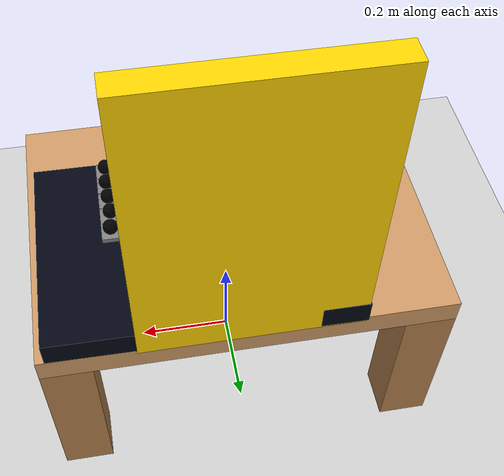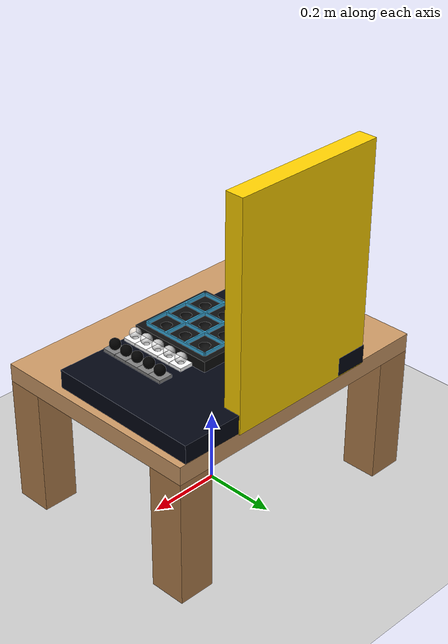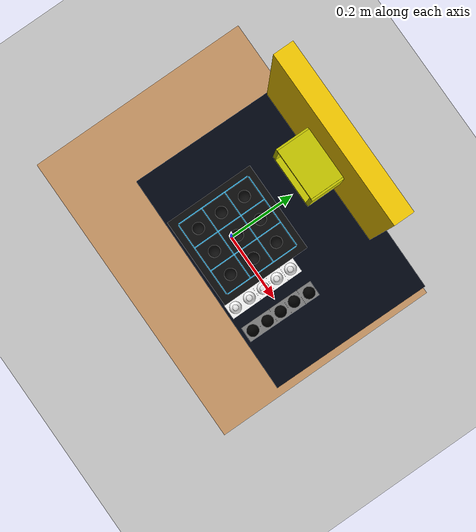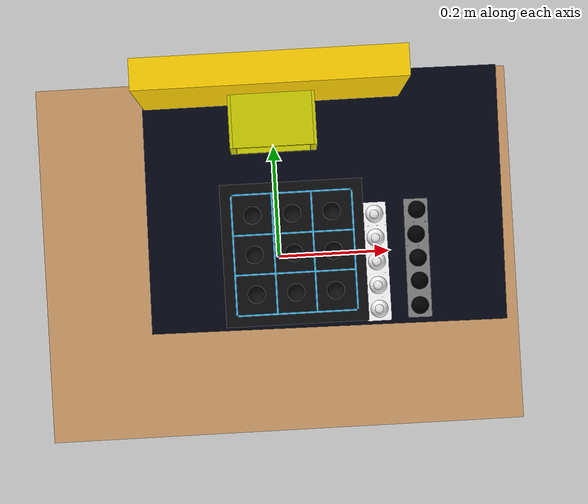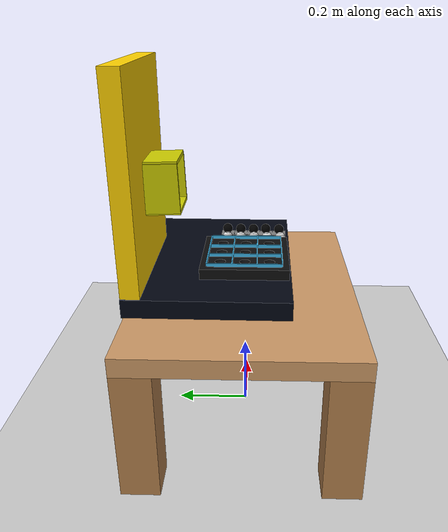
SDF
<sdf version="1.10">
 <world name="WORKINGPROTO">
  <physics name="1ms" type="ignored">
   <max_step_size>0.001</max_step_size>
   <real_time_factor>1</real_time_factor>
   <real_time_update_rate>1000</real_time_update_rate>
  </physics>
  <plugin name="gz::sim::systems::Physics" filename="gz-sim-physics-system"/>
  <plugin name="gz::sim::systems::UserCommands" filename="gz-sim-user-commands-system"/>
  <plugin name="gz::sim::systems::SceneBroadcaster" filename="gz-sim-scene-broadcaster-system"/>
  <gravity>0 0 -9.8000000000000007</gravity>
  <magnetic_field>5.5644999999999998e-06 2.2875799999999999e-05 -4.2388400000000002e-05</magnetic_field>
  <atmosphere type="adiabatic"/>
  <scene>
   <ambient>0.400000006 0.400000006 0.400000006 1</ambient>
   <background>0.699999988 0.699999988 0.699999988 1</background>
   <shadows>true</shadows>
  </scene>
  <model name="ground_plane">
   <static>true</static>
   <link name="link">
    <collision name="collision">
     <geometry><plane><normal>0 0 1</normal><size>100 100</size></plane></geometry>
     <surface>
      <contact><collide_bitmask>65535</collide_bitmask><ode><mu>100</mu><mu2>50</mu2></ode></contact>
      <friction><ode><mu>100</mu><mu2>50</mu2></ode></friction>
     </surface>
    </collision>
    <visual name="visual">
     <cast_shadows>false</cast_shadows>
     <geometry><plane><normal>0 0 1</normal><size>100 100</size></plane></geometry>
     <material>
      <ambient>0.800000012 0.800000012 0.800000012 1</ambient>
      <diffuse>0.800000012 0.800000012 0.800000012 1</diffuse>
      <specular>0 0 0 1</specular>
     </material>
    </visual>
    <inertial>
     <mass>1</mass>
     <inertia><ixx>1</ixx><ixy>0</ixy><ixz>0</ixz><iyy>1</iyy><iyz>0</iyz><izz>1</izz></inertia>
    </inertial>
   </link>
  </model>
  <model name="study_table">
   <static>true</static>
   <link name="table_link">
    <inertial>
     <mass>50</mass>
     <inertia><ixx>10</ixx><iyy>8</iyy><izz>6</izz><ixy>0</ixy><ixz>0</ixz><iyz>0</iyz></inertia>
    </inertial>
    <visual name="table_top">
     <pose>0 0 0.375 0 0 0</pose>
     <geometry><box><size>0.80000000000000004 0.59999999999999998 0.050000000000000003</size></box></geometry>
     <material>
      <ambient>0.800000012 0.600000024 0.400000006 1</ambient>
      <diffuse>0.800000012 0.600000024 0.400000006 1</diffuse>
     </material>
    </visual>
    <visual name="table_leg1">
     <pose>0.34999999999999998 0.25 0.17499999999999999 0 0 0</pose>
     <geometry><box><size>0.10000000000000001 0.10000000000000001 0.34999999999999998</size></box></geometry>
     <material>
      <ambient>0.699999988 0.5 0.300000012 1</ambient>
      <diffuse>0.699999988 0.5 0.300000012 1</diffuse>
     </material>
    </visual>
    <visual name="table_leg2">
     <pose>-0.34999999999999998 0.25 0.17499999999999999 0 0 0</pose>
     <geometry><box><size>0.10000000000000001 0.10000000000000001 0.34999999999999998</size></box></geometry>
     <material>
      <ambient>0.699999988 0.5 0.300000012 1</ambient>
      <diffuse>0.699999988 0.5 0.300000012 1</diffuse>
     </material>
    </visual>
    <visual name="table_leg3">
     <pose>0.34999999999999998 -0.25 0.17499999999999999 0 0 0</pose>
     <geometry><box><size>0.10000000000000001 0.10000000000000001 0.34999999999999998</size></box></geometry>
     <material>
      <ambient>0.699999988 0.5 0.300000012 1</ambient>
      <diffuse>0.699999988 0.5 0.300000012 1</diffuse>
     </material>
    </visual>
    <visual name="table_leg4">
     <pose>-0.34999999999999998 -0.25 0.17499999999999999 0 0 0</pose>
     <geometry><box><size>0.10000000000000001 0.10000000000000001 0.34999999999999998</size></box></geometry>
     <material>
      <ambient>0.699999988 0.5 0.300000012 1</ambient>
      <diffuse>0.699999988 0.5 0.300000012 1</diffuse>
     </material>
    </visual>
    <collision name="table_collision">
     <pose>0 0 0.375 0 0 0</pose>
     <geometry><box><size>0.80000000000000004 0.59999999999999998 0.050000000000000003</size></box></geometry>
    </collision>
   </link>
  </model>
  <model name="guard_rail">
   <static>true</static>
   <pose>-0.09491179883480072 -0.11964300274848938 0.44940531253814697 0 0 0</pose>
   <link name="rail_link">
    <inertial>
     <mass>10</mass>
     <inertia><ixx>1</ixx><iyy>1</iyy><izz>1</izz><ixy>0</ixy><ixz>0</ixz><iyz>0</iyz></inertia>
    </inertial>
    <visual name="rail_visual">
     <geometry>
      <mesh>
       <scale>0.001 0.001 0.001</scale>
       <uri>file:///home/sukritchopra/ros2_ws/src/jetrover_description/models/jetrover/meshes_1/EXTERNAL_MESHES/Guard_Rail.stl</uri>
      </mesh>
     </geometry>
     <material>
      <ambient>0.23529411764705882352941176470588 00.70588235294117647058823529411765 0.90196078431372549019607843137255 1</ambient>
      <diffuse>0.23529411764705882352941176470588 00.70588235294117647058823529411765 0.90196078431372549019607843137255 1</diffuse>
     </material>
    </visual>
    <collision name="rail_collision">
     <geometry>
      <mesh>
       <scale>0.001 0.001 0.001</scale>
       <uri>file:///home/sukritchopra/ros2_ws/src/jetrover_description/models/jetrover/meshes_1/EXTERNAL_MESHES/Guard_Rail.stl</uri>
      </mesh>
     </geometry>
    </collision>
   </link>
  </model>
  <model name="wall">
   <static>true</static>
   <pose>0 0.2800000011920929 0.8476068377494812 0 0 0</pose>
   <link name="wall_link">
    <inertial>
     <mass>20000000</mass>
     <inertia>
      <ixx>1.6699999999999999</ixx>
      <iyy>2.6699999999999999</iyy>
      <izz>1.0700000000000001</izz>
      <ixy>0</ixy>
      <ixz>0</ixz>
      <iyz>0</iyz>
     </inertia>
    </inertial>
    <visual name="wall_base">
     <pose>0 0 -0.14999999999999999 0 0 0</pose>
     <geometry><box><size>0.42999999999999999 0.050000000000000003 0.59999999999999998</size></box></geometry>
     <material><ambient>1 0.823999993 0 1</ambient><diffuse>1 0.823999993 0 1</diffuse></material>
    </visual>
    <collision name="wall_base_collision">
     <pose>0 0 -0.14999999999999999 0 0 0</pose>
     <geometry><box><size>0.42999999999999999 0.050000000000000003 0.59999999999999998</size></box></geometry>
    </collision>
   </link>
  </model>
  <model name="enclosure_floor">
   <static>true</static>
   <pose>0.23016500473022461 0.086331397294998169 0.42553699016571045 1.5699999781232277 -7.7078375414138466e-06 1.5605699752823263</pose>
   <link name="enclosure_floor_link">
    <inertial>
     <mass>20000000</mass>
     <inertia>
      <ixx>1.6699999999999999</ixx>
      <iyy>2.6699999999999999</iyy>
      <izz>1.0700000000000001</izz>
      <ixy>0</ixy>
      <ixz>0</ixz>
      <iyz>0</iyz>
     </inertia>
    </inertial>
    <visual name="enclosure_floor_base">
     <pose>0 0 -0.14999999999999999 0 0 0</pose>
     <geometry><box><size>0.42999999999999999 0.050000000000000003 0.59999999999999998</size></box></geometry>
     <material><ambient>0 0.004 0.015 1</ambient><diffuse>0.004 0.02 0.07 1</diffuse></material>
    </visual>
    <collision name="enclosure_floor_base_collision">
     <pose>0 0 -0.14999999999999999 0 0 0</pose>
     <geometry><box><size>0.42999999999999999 0.050000000000000003 0.59999999999999998</size></box></geometry>
    </collision>
   </link>
  </model>
  <model name="tictactoe_game">
   <static>true</static>
   <pose>-0.095262937247753143 -0.11987800151109697 0.44987368583679194 8.8383407251108898e-08 9.0853610887670766e-07 -0.00040046505367393836</pose>
   <link name="board">
    <inertial>
     <mass>2</mass>
     <inertia>
      <ixx>0.10000000000000001</ixx>
      <iyy>0.10000000000000001</iyy>
      <izz>0.10000000000000001</izz>
      <ixy>0</ixy>
      <ixz>0</ixz>
      <iyz>0</iyz>
     </inertia>
    </inertial>
    <visual name="board_visual">
     <geometry>
      <mesh>
       <scale>0.001 0.001 0.001</scale>
       <uri>file:///home/sukritchopra/ros2_ws/src/jetrover_description/models/jetrover/meshes_1/EXTERNAL_MESHES/TICTACTOE_BOARD2.stl</uri>
      </mesh>
     </geometry>
     <material><ambient>0.05 0.05 0.05 1</ambient><diffuse>0.05 0.05 0.05 1</diffuse></material>
    </visual>
    <collision name="board_collision">
     <geometry>
      <mesh>
       <scale>0.001 0.001 0.001</scale>
       <uri>file:///home/sukritchopra/ros2_ws/src/jetrover_description/models/jetrover/meshes_1/EXTERNAL_MESHES/TICTACTOE_BOARD2.stl</uri>
      </mesh>
     </geometry>
    </collision>
   </link>
  </model>
  <model name="o_piece_1">
   <static>false</static>
   <pose>0.23159830623805799 -0.099521850386227087 0.47221307373438137 1.099562487619385 0.00095130344985209527 0.17904358505541107</pose>
   <link name="o_link">
    <inertial>
     <mass>0.050000000000000003</mass>
     <inertia><ixx>0.001</ixx><iyy>0.001</iyy><izz>0.001</izz><ixy>0</ixy><ixz>0</ixz><iyz>0</iyz></inertia>
    </inertial>
    <visual name="o_visual">
     <geometry><sphere><radius>0.014999999999999999</radius></sphere></geometry>
     <material><ambient>0 0 0 1</ambient><diffuse>0 0 0 1</diffuse></material>
    </visual>
    <collision name="o_collision">
     <geometry><sphere><radius>0.014999999999999999</radius></sphere></geometry>
    </collision>
   </link>
  </model>
  <model name="o_piece_2">
   <static>false</static>
   <pose>0.23249538638418932 -0.019526879532149405 0.47221307394546524 0.088685143764331106 -0.13120976326148309 -0.045394297407328733</pose>
   <link name="o_link">
    <inertial>
     <mass>0.050000000000000003</mass>
     <inertia><ixx>0.001</ixx><iyy>0.001</iyy><izz>0.001</izz><ixy>0</ixy><ixz>0</ixz><iyz>0</iyz></inertia>
    </inertial>
    <visual name="o_visual">
     <geometry><sphere><radius>0.014999999999999999</radius></sphere></geometry>
     <material><ambient>0 0 0 1</ambient><diffuse>0 0 0 1</diffuse></material>
    </visual>
    <collision name="o_collision">
     <geometry><sphere><radius>0.014999999999999999</radius></sphere></geometry>
    </collision>
   </link>
  </model>
  <model name="o_piece_3">
   <static>false</static>
   <pose>0.23474590408851784 0.061562534340690714 0.47306787314528193 -0.35591977707322658 0.16495040803267175 -0.017814969448463037</pose>
   <link name="o_link">
    <inertial>
     <mass>0.050000000000000003</mass>
     <inertia><ixx>0.001</ixx><iyy>0.001</iyy><izz>0.001</izz><ixy>0</ixy><ixz>0</ixz><iyz>0</iyz></inertia>
    </inertial>
    <visual name="o_visual">
     <geometry><sphere><radius>0.014999999999999999</radius></sphere></geometry>
     <material><ambient>0 0 0 1</ambient><diffuse>0 0 0 1</diffuse></material>
    </visual>
    <collision name="o_collision">
     <geometry><sphere><radius>0.014999999999999999</radius></sphere></geometry>
    </collision>
   </link>
  </model>
  <model name="o_piece_4">
   <static>false</static>
   <pose>0.23293946506289523 -0.057943043839601312 0.47309934279836402 -2.5435883917650952 -0.28917875494527118 -2.2810395077770083</pose>
   <link name="o_link">
    <inertial>
     <mass>0.050000000000000003</mass>
     <inertia><ixx>0.001</ixx><iyy>0.001</iyy><izz>0.001</izz><ixy>0</ixy><ixz>0</ixz><iyz>0</iyz></inertia>
    </inertial>
    <visual name="o_visual">
     <geometry><sphere><radius>0.014999999999999999</radius></sphere></geometry>
     <material><ambient>0 0 0 1</ambient><diffuse>0 0 0 1</diffuse></material>
    </visual>
    <collision name="o_collision">
     <geometry><sphere><radius>0.014999999999999999</radius></sphere></geometry>
    </collision>
   </link>
  </model>
  <model name="o_piece_5">
   <static>false</static>
   <pose>0.23143892319570133 0.020392860515334212 0.47296863156656627 0.029897057004133951 -0.27779255937681119 0.062587541202267172</pose>
   <link name="o_link">
    <inertial>
     <mass>0.050000000000000003</mass>
     <inertia><ixx>0.001</ixx><iyy>0.001</iyy><izz>0.001</izz><ixy>0</ixy><ixz>0</ixz><iyz>0</iyz></inertia>
    </inertial>
    <visual name="o_visual">
     <geometry><sphere><radius>0.014999999999999999</radius></sphere></geometry>
     <material><ambient>0 0 0 1</ambient><diffuse>0 0 0 1</diffuse></material>
    </visual>
    <collision name="o_collision">
     <geometry><sphere><radius>0.014999999999999999</radius></sphere></geometry>
    </collision>
   </link>
  </model>
  <model name="robot_box">
   <static>true</static>
   <pose>0 0.21924400329589844 0.68879997730255127 1.5400002335725291 0 0</pose>
   <link name="box_link">
    <inertial>
     <mass>5</mass>
     <inertia>
      <ixx>0.10000000000000001</ixx>
      <iyy>0.10000000000000001</iyy>
      <izz>0.10000000000000001</izz>
      <ixy>0</ixy>
      <ixz>0</ixz>
      <iyz>0</iyz>
     </inertia>
    </inertial>
    <visual name="front_wall">
     <pose>0.065000000000000002 0 0 0 0 0</pose>
     <geometry><box><size>0.01 0.13 0.105</size></box></geometry>
     <material>
      <ambient>0.800000012 0.800000012 3.00000003e-09 1</ambient>
      <diffuse>0.800000012 0.800000012 3.00000003e-09 1</diffuse>
     </material>
    </visual>
    <collision name="front_wall_collision">
     <pose>0.065000000000000002 0 0 0 0 0</pose>
     <geometry><box><size>0.01 0.13 0.105</size></box></geometry>
    </collision>
    <visual name="back_wall">
     <pose>-0.065000000000000002 0 0 0 0 0</pose>
     <geometry><box><size>0.01 0.13 0.105</size></box></geometry>
     <material>
      <ambient>0.800000012 0.800000012 3.00000003e-09 1</ambient>
      <diffuse>0.800000012 0.800000012 3.00000003e-09 1</diffuse>
     </material>
    </visual>
    <collision name="back_wall_collision">
     <pose>-0.065000000000000002 0 0 0 0 0</pose>
     <geometry><box><size>0.01 0.13 0.105</size></box></geometry>
    </collision>
    <visual name="left_wall">
     <pose>0 0.065000000000000002 0 0 0 0</pose>
     <geometry><box><size>0.13 0.01 0.105</size></box></geometry>
     <material>
      <ambient>0.800000012 0.800000072 3.00000003e-09 1</ambient>
      <diffuse>0.800000012 0.800000012 3.00000003e-09 1</diffuse>
     </material>
    </visual>
    <collision name="left_wall_collision">
     <pose>0 0.065000000000000002 0 0 0 0</pose>
     <geometry><box><size>0.13 0.01 0.105</size></box></geometry>
    </collision>
    <visual name="right_wall">
     <pose>0 -0.065000000000000002 0 0 0 0</pose>
     <geometry><box><size>0.13 0.01 0.105</size></box></geometry>
     <material>
      <ambient>0.800000012 0.800000012 3.00000003e-09 1</ambient>
      <diffuse>0.800000012 0.800000012 3.00000003e-09 1</diffuse>
     </material>
    </visual>
    <collision name="right_wall_collision">
     <pose>0 -0.065000000000000002 0 0 0 0</pose>
     <geometry><box><size>0.13 0.01 0.105</size></box></geometry>
    </collision>
   </link>
  </model>
  <model name="x_piece_1">
   <static>false</static>
   <pose>0.16319281304324171 -0.061911279974415728 0.47234891141938318 0.12240460062822194 0.28435447707580258 -0.03366984161849626</pose>
   <link name="x_link">
    <inertial>
     <mass>0.050000000000000003</mass>
     <inertia><ixx>0.001</ixx><iyy>0.001</iyy><izz>0.001</izz><ixy>0</ixy><ixz>0</ixz><iyz>0</iyz></inertia>
    </inertial>
    <visual name="x_visual">
     <geometry><sphere><radius>0.014999999999999999</radius></sphere></geometry>
     <material><ambient>1 1 1 0.800000012</ambient><diffuse>1 1 1 0.800000012</diffuse></material>
    </visual>
    <collision name="x_collision">
     <geometry><sphere><radius>0.014999999999999999</radius></sphere></geometry>
    </collision>
   </link>
  </model>
  <model name="x_piece_2">
   <static>false</static>
   <pose>0.16315572929606686 0.018088699281403692 0.47234890889496434 0.018095089096295012 0.074140720437895782 -0.060699803655068406</pose>
   <link name="x_link">
    <inertial>
     <mass>0.050000000000000003</mass>
     <inertia><ixx>0.001</ixx><iyy>0.001</iyy><izz>0.001</izz><ixy>0</ixy><ixz>0</ixz><iyz>0</iyz></inertia>
    </inertial>
    <visual name="x_visual">
     <geometry><sphere><radius>0.014999999999999999</radius></sphere></geometry>
     <material><ambient>1 1 1 0.800000012</ambient><diffuse>1 1 1 0.800000012</diffuse></material>
    </visual>
    <collision name="x_collision">
     <geometry><sphere><radius>0.014999999999999999</radius></sphere></geometry>
    </collision>
   </link>
  </model>
  <model name="x_piece_3">
   <static>false</static>
   <pose>0.16315755257709333 0.058140257534259346 0.47238010586448675 -0.48764631349848225 0.13936648111770564 -0.19172634526576904</pose>
   <link name="x_link">
    <inertial>
     <mass>0.050000000000000003</mass>
     <inertia><ixx>0.001</ixx><iyy>0.001</iyy><izz>0.001</izz><ixy>0</ixy><ixz>0</ixz><iyz>0</iyz></inertia>
    </inertial>
    <visual name="x_visual">
     <geometry><sphere><radius>0.014999999999999999</radius></sphere></geometry>
     <material><ambient>1 1 1 0.800000012</ambient><diffuse>1 1 1 0.800000012</diffuse></material>
    </visual>
    <collision name="x_collision">
     <geometry><sphere><radius>0.014999999999999999</radius></sphere></geometry>
    </collision>
   </link>
  </model>
  <model name="x_piece_4">
   <static>false</static>
   <pose>0.16321135833759973 -0.10191128721206233 0.4723489136389995 0.21102501784383701 0.11792377096822852 -0.015972035988285459</pose>
   <link name="x_link">
    <inertial>
     <mass>0.050000000000000003</mass>
     <inertia><ixx>0.001</ixx><iyy>0.001</iyy><izz>0.001</izz><ixy>0</ixy><ixz>0</ixz><iyz>0</iyz></inertia>
    </inertial>
    <visual name="x_visual">
     <geometry><sphere><radius>0.014999999999999999</radius></sphere></geometry>
     <material><ambient>1 1 1 0.800000012</ambient><diffuse>1 1 1 0.800000012</diffuse></material>
    </visual>
    <collision name="x_collision">
     <geometry><sphere><radius>0.014999999999999999</radius></sphere></geometry>
    </collision>
   </link>
  </model>
  <model name="x_piece_5">
   <static>false</static>
   <pose>0.16317426273247812 -0.021911284322579699 0.47234891293090836 -0.29124549589737508 0.052572601193254714 -0.043051709312888362</pose>
   <link name="x_link">
    <inertial>
     <mass>0.050000000000000003</mass>
     <inertia><ixx>0.001</ixx><iyy>0.001</iyy><izz>0.001</izz><ixy>0</ixy><ixz>0</ixz><iyz>0</iyz></inertia>
    </inertial>
    <visual name="x_visual">
     <geometry><sphere><radius>0.014999999999999999</radius></sphere></geometry>
     <material><ambient>1 1 1 0.800000012</ambient><diffuse>1 1 1 0.800000012</diffuse></material>
    </visual>
    <collision name="x_collision">
     <geometry><sphere><radius>0.014999999999999999</radius></sphere></geometry>
    </collision>
   </link>
  </model>
  <model name="ball_store_grey">
   <static>true</static>
   <pose>0.21361799538135526 0.080691099166870089 0.44921416044235229 0 0 -1.5820100666549122</pose>
   <link name="ball_store_link">
    <inertial>
     <mass>1</mass>
     <inertia>
      <ixx>0.10000000000000001</ixx>
      <iyy>0.10000000000000001</iyy>
      <izz>0.10000000000000001</izz>
      <ixy>0</ixy>
      <ixz>0</ixz>
      <iyz>0</iyz>
     </inertia>
    </inertial>
    <visual name="ball_store_visual">
     <geometry>
      <mesh>
       <scale>0.001 0.001 0.001</scale>
       <uri>file:///home/sukritchopra/ros2_ws/src/jetrover_description/models/jetrover/meshes_1/EXTERNAL_MESHES/ballstore.stl</uri>
      </mesh>
     </geometry>
     <material><ambient>0.5 0.5 0.5 1</ambient><diffuse>0.5 0.5 0.5 1</diffuse></material>
    </visual>
    <collision name="ball_store_collision">
     <geometry>
      <mesh>
       <scale>0.001 0.001 0.001</scale>
       <uri>file:///home/sukritchopra/ros2_ws/src/jetrover_description/models/jetrover/meshes_1/EXTERNAL_MESHES/ballstore.stl</uri>
      </mesh>
     </geometry>
    </collision>
   </link>
  </model>
  <model name="ball_store_white">
   <static>true</static>
   <pose>0.18322062492370605 -0.12190199643373488 0.44934999942779541 0 0 1.5712599811587429</pose>
   <link name="ball_store_link">
    <inertial>
     <mass>1</mass>
     <inertia>
      <ixx>0.10000000000000001</ixx>
      <iyy>0.10000000000000001</iyy>
      <izz>0.10000000000000001</izz>
      <ixy>0</ixy>
      <ixz>0</ixz>
      <iyz>0</iyz>
     </inertia>
    </inertial>
    <visual name="ball_store_visual">
     <geometry>
      <mesh>
       <scale>0.001 0.001 0.001</scale>
       <uri>file:///home/sukritchopra/ros2_ws/src/jetrover_description/models/jetrover/meshes_1/EXTERNAL_MESHES/ballstore.stl</uri>
      </mesh>
     </geometry>
     <material><ambient>1 1 1 1</ambient><diffuse>1 1 1 1</diffuse></material>
    </visual>
    <collision name="ball_store_collision">
     <geometry>
      <mesh>
       <scale>0.001 0.001 0.001</scale>
       <uri>file:///home/sukritchopra/ros2_ws/src/jetrover_description/models/jetrover/meshes_1/EXTERNAL_MESHES/ballstore.stl</uri>
      </mesh>
     </geometry>
    </collision>
   </link>
  </model>
  <light name="sun" type="directional">
   <pose>0 0 10 0 0 0</pose>
   <intensity>1</intensity>
   <direction>-0.5 0.10000000000000001 -0.90000000000000002</direction>
   <diffuse>0.800000012 0.800000012 0.800000012 1</diffuse>
   <specular>0.200000003 0.200000003 0.200000003 1</specular>
   <attenuation>
    <range>1000</range>
    <linear>0.0099999997764825821</linear>
    <constant>0.89999997615814209</constant>
    <quadratic>0.0010000000474974513</quadratic>
   </attenuation>
   <spot><inner_angle>0</inner_angle><outer_angle>0</outer_angle><falloff>0</falloff></spot>
  </light>
 </world>
</sdf>
